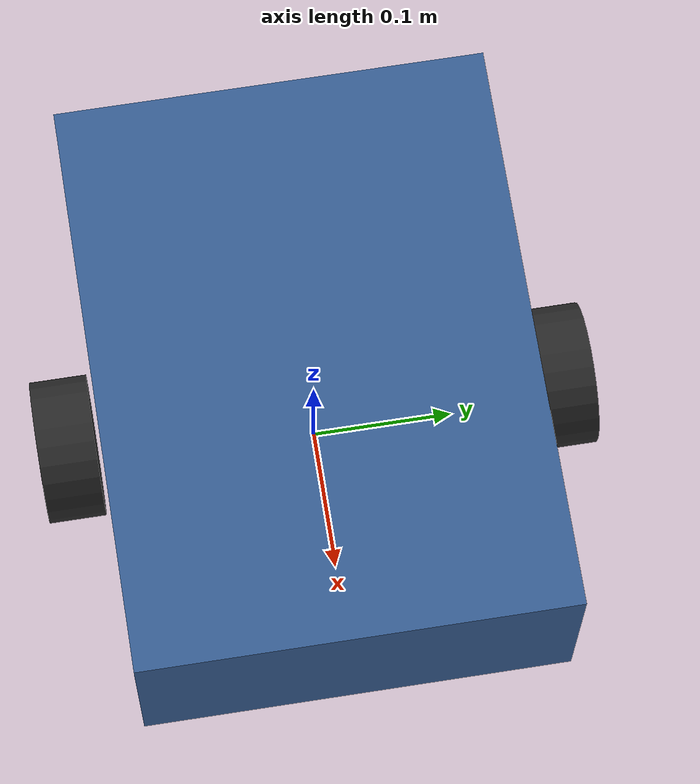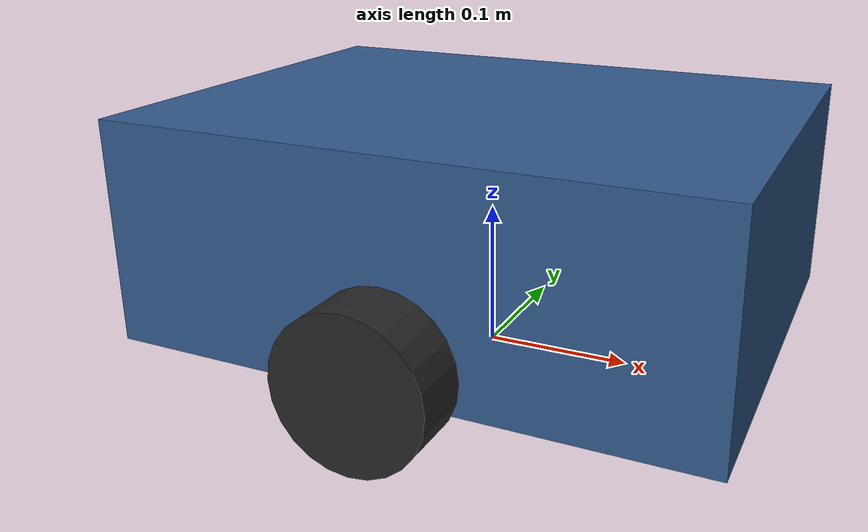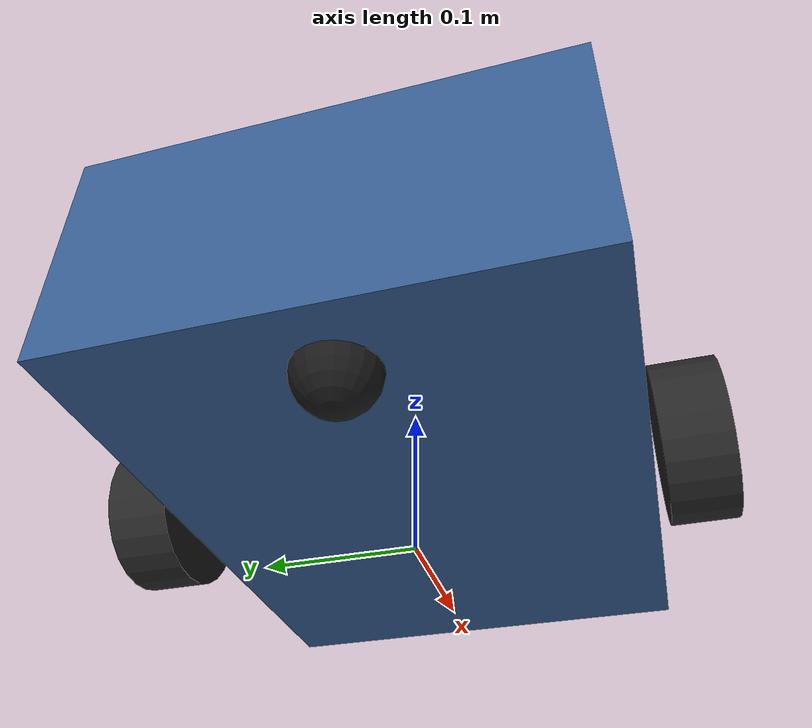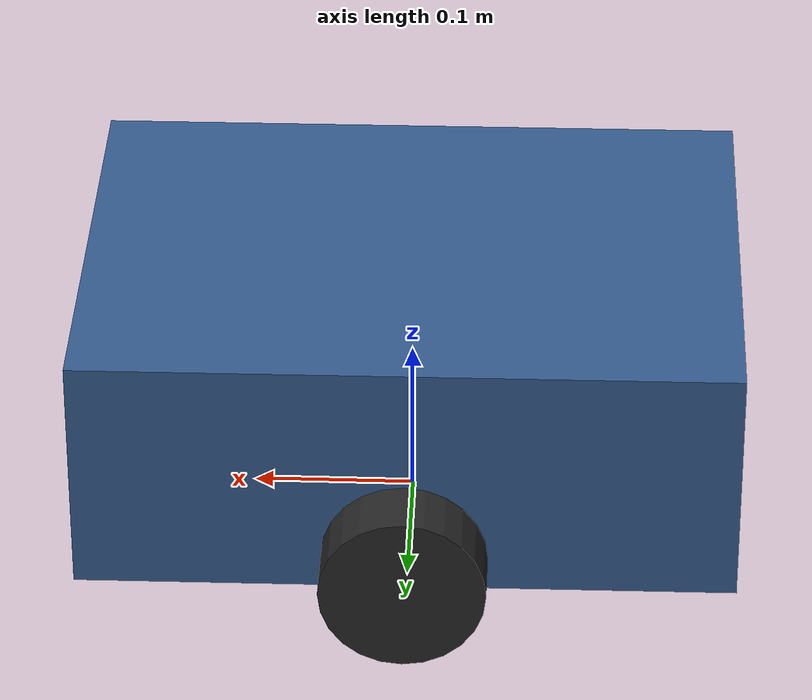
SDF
<?xml version="1.0" ?>
<sdf version="1.9">
  <model name="acroba_bot">
    <static>false</static>

    <!-- Chassis -->
    <link name="base_link">
      <pose>0 0 0.1 0 0 0</pose>
      <inertial>
        <mass>10.0</mass>
        <inertia>
          <ixx>0.1</ixx><iyy>0.1</iyy><izz>0.15</izz>
        </inertia>
      </inertial>
      <collision name="collision">
        <geometry>
          <box><size>0.4 0.3 0.15</size></box>
        </geometry>
      </collision>
      <visual name="visual">
        <geometry>
          <box><size>0.4 0.3 0.15</size></box>
        </geometry>
        <material>
          <ambient>0.15 0.25 0.4 1</ambient>
          <diffuse>0.2 0.35 0.55 1</diffuse>
          <specular>0.3 0.3 0.3 1</specular>
        </material>
      </visual>

      <!-- 2D LiDAR sensor -->
      <sensor name="lidar" type="gpu_lidar">
        <pose>0.15 0 0.1 0 0 0</pose>
        <topic>/scan</topic>
        <update_rate>10</update_rate>
        <lidar>
          <scan>
            <horizontal>
              <samples>360</samples>
              <resolution>1</resolution>
              <min_angle>-3.14159</min_angle>
              <max_angle>3.14159</max_angle>
            </horizontal>
          </scan>
          <range>
            <min>0.12</min>
            <max>12.0</max>
            <resolution>0.01</resolution>
          </range>
          <noise>
            <type>gaussian</type>
            <mean>0.0</mean>
            <stddev>0.01</stddev>
          </noise>
        </lidar>
        <always_on>true</always_on>
        <visualize>true</visualize>
      </sensor>

      <!-- IMU sensor -->
      <sensor name="imu" type="imu">
        <always_on>true</always_on>
        <update_rate>100</update_rate>
        <topic>/imu</topic>
        <imu>
          <angular_velocity>
            <x><noise type="gaussian"><mean>0</mean><stddev>0.0002</stddev></noise></x>
            <y><noise type="gaussian"><mean>0</mean><stddev>0.0002</stddev></noise></y>
            <z><noise type="gaussian"><mean>0</mean><stddev>0.0002</stddev></noise></z>
          </angular_velocity>
          <linear_acceleration>
            <x><noise type="gaussian"><mean>0</mean><stddev>0.017</stddev></noise></x>
            <y><noise type="gaussian"><mean>0</mean><stddev>0.017</stddev></noise></y>
            <z><noise type="gaussian"><mean>0</mean><stddev>0.017</stddev></noise></z>
          </linear_acceleration>
        </imu>
      </sensor>
    </link>

    <!-- Left wheel -->
    <link name="left_wheel">
      <pose>0 0.175 0.05 -1.5708 0 0</pose>
      <inertial>
        <mass>0.5</mass>
        <inertia>
          <ixx>0.001</ixx><iyy>0.001</iyy><izz>0.0005</izz>
        </inertia>
      </inertial>
      <collision name="collision">
        <geometry><cylinder><radius>0.05</radius><length>0.04</length></cylinder></geometry>
      </collision>
      <visual name="visual">
        <geometry><cylinder><radius>0.05</radius><length>0.04</length></cylinder></geometry>
        <material>
          <ambient>0.1 0.1 0.1 1</ambient>
          <diffuse>0.15 0.15 0.15 1</diffuse>
        </material>
      </visual>
    </link>

    <!-- Right wheel -->
    <link name="right_wheel">
      <pose>0 -0.175 0.05 -1.5708 0 0</pose>
      <inertial>
        <mass>0.5</mass>
        <inertia>
          <ixx>0.001</ixx><iyy>0.001</iyy><izz>0.0005</izz>
        </inertia>
      </inertial>
      <collision name="collision">
        <geometry><cylinder><radius>0.05</radius><length>0.04</length></cylinder></geometry>
      </collision>
      <visual name="visual">
        <geometry><cylinder><radius>0.05</radius><length>0.04</length></cylinder></geometry>
        <material>
          <ambient>0.1 0.1 0.1 1</ambient>
          <diffuse>0.15 0.15 0.15 1</diffuse>
        </material>
      </visual>
    </link>

    <!-- Caster wheel (passive, front) -->
    <link name="caster">
      <pose>-0.15 0 0.025 0 0 0</pose>
      <inertial>
        <mass>0.2</mass>
        <inertia>
          <ixx>0.0001</ixx><iyy>0.0001</iyy><izz>0.0001</izz>
        </inertia>
      </inertial>
      <collision name="collision">
        <geometry><sphere><radius>0.025</radius></sphere></geometry>
        <surface>
          <friction><ode><mu>0.0</mu><mu2>0.0</mu2></ode></friction>
        </surface>
      </collision>
      <visual name="visual">
        <geometry><sphere><radius>0.025</radius></sphere></geometry>
        <material>
          <ambient>0.1 0.1 0.1 1</ambient>
        </material>
      </visual>
    </link>

    <!-- Joints -->
    <joint name="left_wheel_joint" type="revolute">
      <parent>base_link</parent>
      <child>left_wheel</child>
      <axis><xyz>0 0 1</xyz></axis>
    </joint>

    <joint name="right_wheel_joint" type="revolute">
      <parent>base_link</parent>
      <child>right_wheel</child>
      <axis><xyz>0 0 1</xyz></axis>
    </joint>

    <joint name="caster_joint" type="ball">
      <parent>base_link</parent>
      <child>caster</child>
    </joint>

    <!-- Differential drive plugin -->
    <plugin filename="gz-sim-diff-drive-system" name="gz::sim::systems::DiffDrive">
      <left_joint>left_wheel_joint</left_joint>
      <right_joint>right_wheel_joint</right_joint>
      <wheel_separation>0.35</wheel_separation>
      <wheel_radius>0.05</wheel_radius>
      <max_linear_acceleration>1.0</max_linear_acceleration>
      <min_linear_acceleration>-1.0</min_linear_acceleration>
      <max_angular_acceleration>2.0</max_angular_acceleration>
      <min_angular_acceleration>-2.0</min_angular_acceleration>
      <odom_topic>/odom</odom_topic>
      <tf_topic>/tf</tf_topic>
      <frame_id>odom</frame_id>
      <child_frame_id>base_link</child_frame_id>
      <odom_publish_frequency>50</odom_publish_frequency>
    </plugin>

    <!-- Pose publisher for TF -->
    <plugin filename="gz-sim-pose-publisher-system" name="gz::sim::systems::PosePublisher">
      <publish_link_pose>true</publish_link_pose>
      <publish_nested_model_pose>true</publish_nested_model_pose>
      <update_frequency>50</update_frequency>
    </plugin>

  </model>
</sdf>
